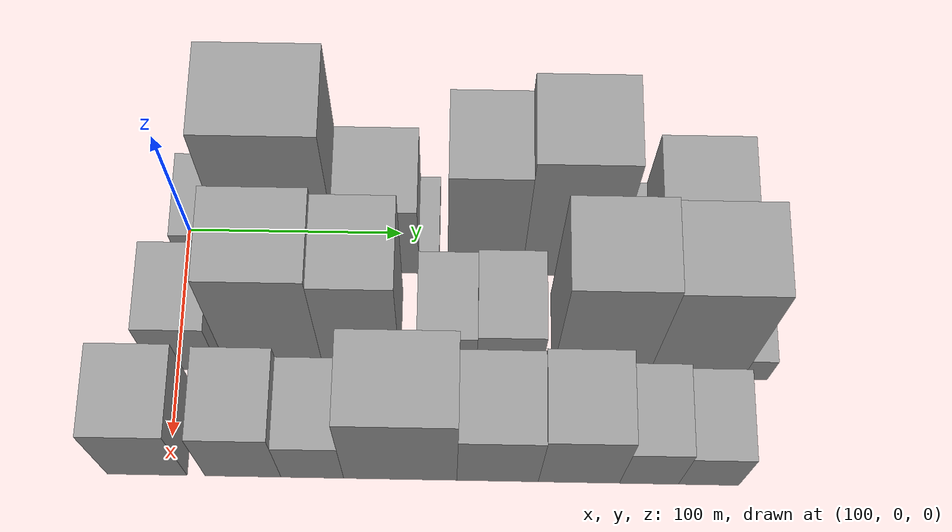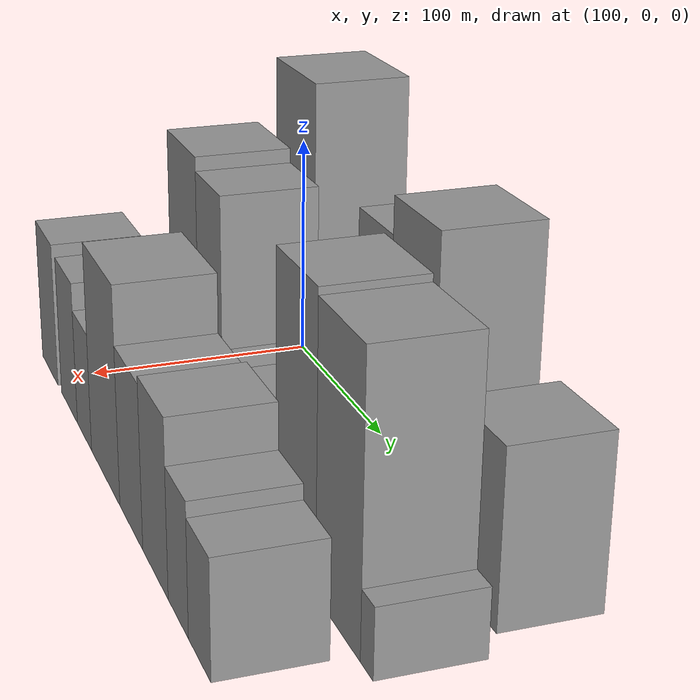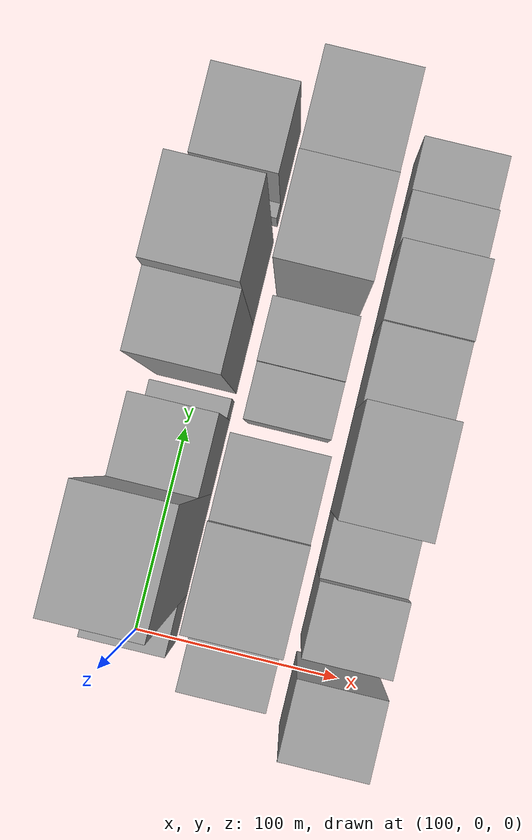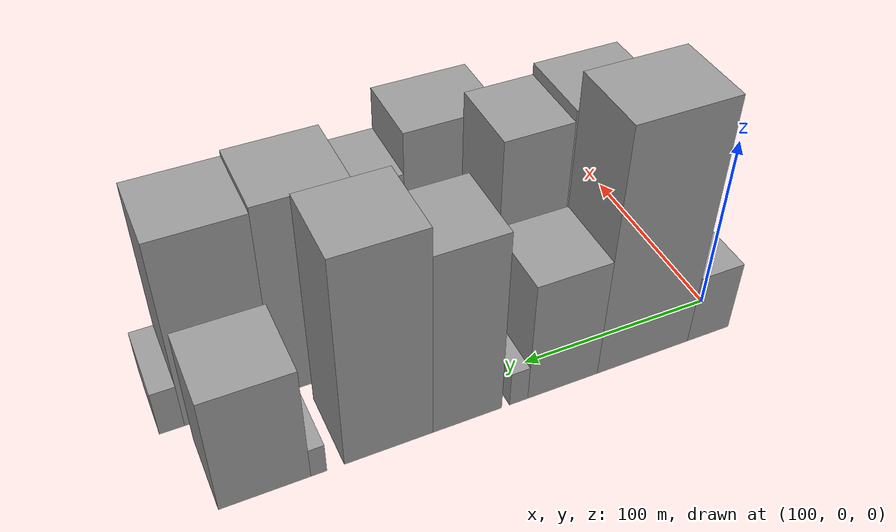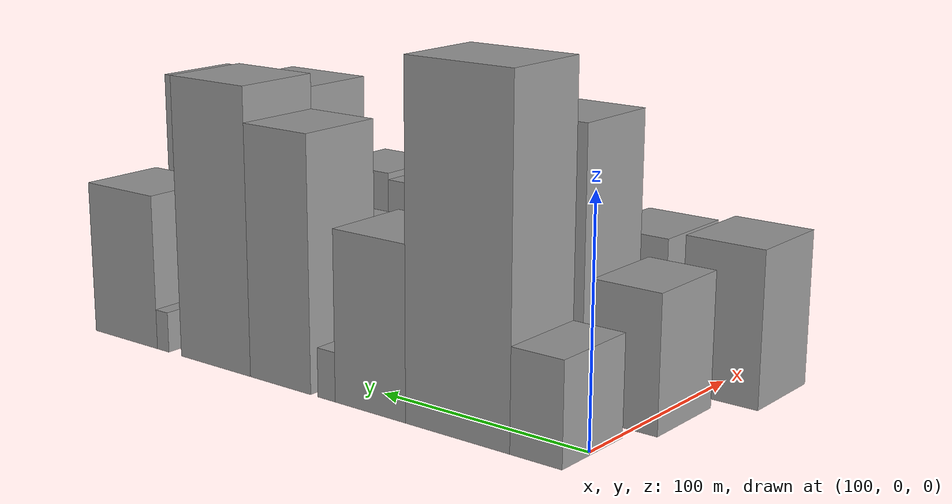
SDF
<sdf version="1.6">
 <world name="default">
  <model name="building_19">
   <static>1</static>
   <pose>100.0000 10.1503 0 0.000000 0.000000 0.000000</pose>
   <link name="link">
    <pose>0 0 21.00 0 0 0</pose>
    <collision name="collision"><geometry><box><size>40.0000 23.5738 42.0000</size></box></geometry></collision>
    <visual name="visual">
     <cast_shadows>0</cast_shadows>
     <geometry><box><size>40.0000 23.5738 42.0000</size></box></geometry>
     <material>
      <script>
       <uri>model://grey_wall/materials/scripts</uri>
       <uri>model://grey_wall/materials/textures</uri>
       <name>vrc/grey_wall</name>
      </script>
     </material>
    </visual>
   </link>
  </model>
  <model name="building_20">
   <static>1</static>
   <pose>100.0000 47.0468 0 0.000000 0.000000 0.000000</pose>
   <link name="link">
    <pose>0 0 72.00 0 0 0</pose>
    <collision name="collision"><geometry><box><size>40.0000 50.2192 144.0000</size></box></geometry></collision>
    <visual name="visual">
     <cast_shadows>0</cast_shadows>
     <geometry><box><size>40.0000 50.2192 144.0000</size></box></geometry>
     <material>
      <script>
       <uri>model://grey_wall/materials/scripts</uri>
       <uri>model://grey_wall/materials/textures</uri>
       <name>vrc/grey_wall</name>
      </script>
     </material>
    </visual>
   </link>
  </model>
  <model name="building_21">
   <static>1</static>
   <pose>100.0000 90.5522 0 0.000000 0.000000 0.000000</pose>
   <link name="link">
    <pose>0 0 36.00 0 0 0</pose>
    <collision name="collision"><geometry><box><size>40.0000 36.7916 72.0000</size></box></geometry></collision>
    <visual name="visual">
     <cast_shadows>0</cast_shadows>
     <geometry><box><size>40.0000 36.7916 72.0000</size></box></geometry>
     <material>
      <script>
       <uri>model://grey_wall/materials/scripts</uri>
       <uri>model://grey_wall/materials/textures</uri>
       <name>vrc/grey_wall</name>
      </script>
     </material>
    </visual>
   </link>
  </model>
  <model name="building_22">
   <static>1</static>
   <pose>100.0000 113.6437 0 0.000000 0.000000 0.000000</pose>
   <link name="link">
    <pose>0 0 10.50 0 0 0</pose>
    <collision name="collision"><geometry><box><size>40.0000 9.3914 21.0000</size></box></geometry></collision>
    <visual name="visual">
     <cast_shadows>0</cast_shadows>
     <geometry><box><size>40.0000 9.3914 21.0000</size></box></geometry>
     <material>
      <script>
       <uri>model://grey_wall/materials/scripts</uri>
       <uri>model://grey_wall/materials/textures</uri>
       <name>vrc/grey_wall</name>
      </script>
     </material>
    </visual>
   </link>
  </model>
  <model name="building_23">
   <static>1</static>
   <pose>100.0000 139.5569 0 0.000000 0.000000 0.000000</pose>
   <link name="link">
    <pose>0 0 54.00 0 0 0</pose>
    <collision name="collision"><geometry><box><size>40.0000 34.4349 108.0000</size></box></geometry></collision>
    <visual name="visual">
     <cast_shadows>0</cast_shadows>
     <geometry><box><size>40.0000 34.4349 108.0000</size></box></geometry>
     <material>
      <script>
       <uri>model://grey_wall/materials/scripts</uri>
       <uri>model://grey_wall/materials/textures</uri>
       <name>vrc/grey_wall</name>
      </script>
     </material>
    </visual>
   </link>
  </model>
  <model name="building_24">
   <static>1</static>
   <pose>100.0000 177.8657 0 0.000000 0.000000 0.000000</pose>
   <link name="link">
    <pose>0 0 61.50 0 0 0</pose>
    <collision name="collision"><geometry><box><size>40.0000 42.1828 123.0000</size></box></geometry></collision>
    <visual name="visual">
     <cast_shadows>0</cast_shadows>
     <geometry><box><size>40.0000 42.1828 123.0000</size></box></geometry>
     <material>
      <script>
       <uri>model://grey_wall/materials/scripts</uri>
       <uri>model://grey_wall/materials/textures</uri>
       <name>vrc/grey_wall</name>
      </script>
     </material>
    </visual>
   </link>
  </model>
  <model name="building_25">
   <static>1</static>
   <pose>100.0000 210.6498 0 0.000000 0.000000 0.000000</pose>
   <link name="link">
    <pose>0 0 9.00 0 0 0</pose>
    <collision name="collision"><geometry><box><size>40.0000 7.3854 18.0000</size></box></geometry></collision>
    <visual name="visual">
     <cast_shadows>0</cast_shadows>
     <geometry><box><size>40.0000 7.3854 18.0000</size></box></geometry>
     <material>
      <script>
       <uri>model://grey_wall/materials/scripts</uri>
       <uri>model://grey_wall/materials/textures</uri>
       <name>vrc/grey_wall</name>
      </script>
     </material>
    </visual>
   </link>
  </model>
  <model name="building_26">
   <static>1</static>
   <pose>100.0000 234.8787 0 0.000000 0.000000 0.000000</pose>
   <link name="link">
    <pose>0 0 34.50 0 0 0</pose>
    <collision name="collision"><geometry><box><size>40.0000 41.0723 69.0000</size></box></geometry></collision>
    <visual name="visual">
     <cast_shadows>0</cast_shadows>
     <geometry><box><size>40.0000 41.0723 69.0000</size></box></geometry>
     <material>
      <script>
       <uri>model://grey_wall/materials/scripts</uri>
       <uri>model://grey_wall/materials/textures</uri>
       <name>vrc/grey_wall</name>
      </script>
     </material>
    </visual>
   </link>
  </model>
  <model name="building_51">
   <static>1</static>
   <pose>149.0000 3.9588 0 0.000000 0.000000 0.000000</pose>
   <link name="link">
    <pose>0 0 28.50 0 0 0</pose>
    <collision name="collision"><geometry><box><size>40.0000 30.7917 57.0000</size></box></geometry></collision>
    <visual name="visual">
     <cast_shadows>0</cast_shadows>
     <geometry><box><size>40.0000 30.7917 57.0000</size></box></geometry>
     <material>
      <script>
       <uri>model://grey_wall/materials/scripts</uri>
       <uri>model://grey_wall/materials/textures</uri>
       <name>vrc/grey_wall</name>
      </script>
     </material>
    </visual>
   </link>
  </model>
  <model name="building_52">
   <static>1</static>
   <pose>149.0000 45.1882 0 0.000000 0.000000 0.000000</pose>
   <link name="link">
    <pose>0 0 58.50 0 0 0</pose>
    <collision name="collision"><geometry><box><size>40.0000 43.6672 117.0000</size></box></geometry></collision>
    <visual name="visual">
     <cast_shadows>0</cast_shadows>
     <geometry><box><size>40.0000 43.6672 117.0000</size></box></geometry>
     <material>
      <script>
       <uri>model://grey_wall/materials/scripts</uri>
       <uri>model://grey_wall/materials/textures</uri>
       <name>vrc/grey_wall</name>
      </script>
     </material>
    </visual>
   </link>
  </model>
  <model name="building_53">
   <static>1</static>
   <pose>149.0000 84.3158 0 0.000000 0.000000 0.000000</pose>
   <link name="link">
    <pose>0 0 55.50 0 0 0</pose>
    <collision name="collision"><geometry><box><size>40.0000 34.5880 111.0000</size></box></geometry></collision>
    <visual name="visual">
     <cast_shadows>0</cast_shadows>
     <geometry><box><size>40.0000 34.5880 111.0000</size></box></geometry>
     <material>
      <script>
       <uri>model://grey_wall/materials/scripts</uri>
       <uri>model://grey_wall/materials/textures</uri>
       <name>vrc/grey_wall</name>
      </script>
     </material>
    </visual>
   </link>
  </model>
  <model name="building_54">
   <static>1</static>
   <pose>149.0000 122.7011 0 0.000000 0.000000 0.000000</pose>
   <link name="link">
    <pose>0 0 25.50 0 0 0</pose>
    <collision name="collision"><geometry><box><size>40.0000 26.1826 51.0000</size></box></geometry></collision>
    <visual name="visual">
     <cast_shadows>0</cast_shadows>
     <geometry><box><size>40.0000 26.1826 51.0000</size></box></geometry>
     <material>
      <script>
       <uri>model://grey_wall/materials/scripts</uri>
       <uri>model://grey_wall/materials/textures</uri>
       <name>vrc/grey_wall</name>
      </script>
     </material>
    </visual>
   </link>
  </model>
  <model name="building_55">
   <static>1</static>
   <pose>149.0000 150.5972 0 0.000000 0.000000 0.000000</pose>
   <link name="link">
    <pose>0 0 27.00 0 0 0</pose>
    <collision name="collision"><geometry><box><size>40.0000 29.6095 54.0000</size></box></geometry></collision>
    <visual name="visual">
     <cast_shadows>0</cast_shadows>
     <geometry><box><size>40.0000 29.6095 54.0000</size></box></geometry>
     <material>
      <script>
       <uri>model://grey_wall/materials/scripts</uri>
       <uri>model://grey_wall/materials/textures</uri>
       <name>vrc/grey_wall</name>
      </script>
     </material>
    </visual>
   </link>
  </model>
  <model name="building_56">
   <static>1</static>
   <pose>149.0000 192.1033 0 0.000000 0.000000 0.000000</pose>
   <link name="link">
    <pose>0 0 57.00 0 0 0</pose>
    <collision name="collision"><geometry><box><size>40.0000 43.4027 114.0000</size></box></geometry></collision>
    <visual name="visual">
     <cast_shadows>0</cast_shadows>
     <geometry><box><size>40.0000 43.4027 114.0000</size></box></geometry>
     <material>
      <script>
       <uri>model://grey_wall/materials/scripts</uri>
       <uri>model://grey_wall/materials/textures</uri>
       <name>vrc/grey_wall</name>
      </script>
     </material>
    </visual>
   </link>
  </model>
  <model name="building_57">
   <static>1</static>
   <pose>149.0000 235.4099 0 0.000000 0.000000 0.000000</pose>
   <link name="link">
    <pose>0 0 55.50 0 0 0</pose>
    <collision name="collision"><geometry><box><size>40.0000 43.2106 111.0000</size></box></geometry></collision>
    <visual name="visual">
     <cast_shadows>0</cast_shadows>
     <geometry><box><size>40.0000 43.2106 111.0000</size></box></geometry>
     <material>
      <script>
       <uri>model://grey_wall/materials/scripts</uri>
       <uri>model://grey_wall/materials/textures</uri>
       <name>vrc/grey_wall</name>
      </script>
     </material>
    </visual>
   </link>
  </model>
  <model name="building_58">
   <static>1</static>
   <pose>149.0000 262.7709 0 0.000000 0.000000 0.000000</pose>
   <link name="link">
    <pose>0 0 13.50 0 0 0</pose>
    <collision name="collision"><geometry><box><size>40.0000 11.5114 27.0000</size></box></geometry></collision>
    <visual name="visual">
     <cast_shadows>0</cast_shadows>
     <geometry><box><size>40.0000 11.5114 27.0000</size></box></geometry>
     <material>
      <script>
       <uri>model://grey_wall/materials/scripts</uri>
       <uri>model://grey_wall/materials/textures</uri>
       <name>vrc/grey_wall</name>
      </script>
     </material>
    </visual>
   </link>
  </model>
  <model name="building_80">
   <static>1</static>
   <pose>198.0000 -9.7621 0 0.000000 0.000000 0.000000</pose>
   <link name="link">
    <pose>0 0 33.00 0 0 0</pose>
    <collision name="collision"><geometry><box><size>40.0000 35.5849 66.0000</size></box></geometry></collision>
    <visual name="visual">
     <cast_shadows>0</cast_shadows>
     <geometry><box><size>40.0000 35.5849 66.0000</size></box></geometry>
     <material>
      <script>
       <uri>model://grey_wall/materials/scripts</uri>
       <uri>model://grey_wall/materials/textures</uri>
       <name>vrc/grey_wall</name>
      </script>
     </material>
    </visual>
   </link>
  </model>
  <model name="building_81">
   <static>1</static>
   <pose>198.0000 32.9275 0 0.000000 0.000000 0.000000</pose>
   <link name="link">
    <pose>0 0 31.50 0 0 0</pose>
    <collision name="collision"><geometry><box><size>40.0000 33.7942 63.0000</size></box></geometry></collision>
    <visual name="visual">
     <cast_shadows>0</cast_shadows>
     <geometry><box><size>40.0000 33.7942 63.0000</size></box></geometry>
     <material>
      <script>
       <uri>model://grey_wall/materials/scripts</uri>
       <uri>model://grey_wall/materials/textures</uri>
       <name>vrc/grey_wall</name>
      </script>
     </material>
    </visual>
   </link>
  </model>
  <model name="building_82">
   <static>1</static>
   <pose>198.0000 63.7659 0 0.000000 0.000000 0.000000</pose>
   <link name="link">
    <pose>0 0 25.50 0 0 0</pose>
    <collision name="collision"><geometry><box><size>40.0000 27.8826 51.0000</size></box></geometry></collision>
    <visual name="visual">
     <cast_shadows>0</cast_shadows>
     <geometry><box><size>40.0000 27.8826 51.0000</size></box></geometry>
     <material>
      <script>
       <uri>model://grey_wall/materials/scripts</uri>
       <uri>model://grey_wall/materials/textures</uri>
       <name>vrc/grey_wall</name>
      </script>
     </material>
    </visual>
   </link>
  </model>
  <model name="building_83">
   <static>1</static>
   <pose>198.0000 102.8362 0 0.000000 0.000000 0.000000</pose>
   <link name="link">
    <pose>0 0 45.00 0 0 0</pose>
    <collision name="collision"><geometry><box><size>40.0000 50.2581 90.0000</size></box></geometry></collision>
    <visual name="visual">
     <cast_shadows>0</cast_shadows>
     <geometry><box><size>40.0000 50.2581 90.0000</size></box></geometry>
     <material>
      <script>
       <uri>model://grey_wall/materials/scripts</uri>
       <uri>model://grey_wall/materials/textures</uri>
       <name>vrc/grey_wall</name>
      </script>
     </material>
    </visual>
   </link>
  </model>
  <model name="building_84">
   <static>1</static>
   <pose>198.0000 146.0418 0 0.000000 0.000000 0.000000</pose>
   <link name="link">
    <pose>0 0 33.00 0 0 0</pose>
    <collision name="collision"><geometry><box><size>40.0000 36.1531 66.0000</size></box></geometry></collision>
    <visual name="visual">
     <cast_shadows>0</cast_shadows>
     <geometry><box><size>40.0000 36.1531 66.0000</size></box></geometry>
     <material>
      <script>
       <uri>model://grey_wall/materials/scripts</uri>
       <uri>model://grey_wall/materials/textures</uri>
       <name>vrc/grey_wall</name>
      </script>
     </material>
    </visual>
   </link>
  </model>
  <model name="building_85">
   <static>1</static>
   <pose>198.0000 182.1685 0 0.000000 0.000000 0.000000</pose>
   <link name="link">
    <pose>0 0 34.50 0 0 0</pose>
    <collision name="collision"><geometry><box><size>40.0000 36.1003 69.0000</size></box></geometry></collision>
    <visual name="visual">
     <cast_shadows>0</cast_shadows>
     <geometry><box><size>40.0000 36.1003 69.0000</size></box></geometry>
     <material>
      <script>
       <uri>model://grey_wall/materials/scripts</uri>
       <uri>model://grey_wall/materials/textures</uri>
       <name>vrc/grey_wall</name>
      </script>
     </material>
    </visual>
   </link>
  </model>
  <model name="building_86">
   <static>1</static>
   <pose>198.0000 213.2985 0 0.000000 0.000000 0.000000</pose>
   <link name="link">
    <pose>0 0 25.50 0 0 0</pose>
    <collision name="collision"><geometry><box><size>40.0000 26.1597 51.0000</size></box></geometry></collision>
    <visual name="visual">
     <cast_shadows>0</cast_shadows>
     <geometry><box><size>40.0000 26.1597 51.0000</size></box></geometry>
     <material>
      <script>
       <uri>model://grey_wall/materials/scripts</uri>
       <uri>model://grey_wall/materials/textures</uri>
       <name>vrc/grey_wall</name>
      </script>
     </material>
    </visual>
   </link>
  </model>
  <model name="building_87">
   <static>1</static>
   <pose>198.0000 239.7685 0 0.000000 0.000000 0.000000</pose>
   <link name="link">
    <pose>0 0 22.50 0 0 0</pose>
    <collision name="collision"><geometry><box><size>40.0000 26.7803 45.0000</size></box></geometry></collision>
    <visual name="visual">
     <cast_shadows>0</cast_shadows>
     <geometry><box><size>40.0000 26.7803 45.0000</size></box></geometry>
     <material>
      <script>
       <uri>model://grey_wall/materials/scripts</uri>
       <uri>model://grey_wall/materials/textures</uri>
       <name>vrc/grey_wall</name>
      </script>
     </material>
    </visual>
   </link>
  </model>
 </world>
</sdf>
